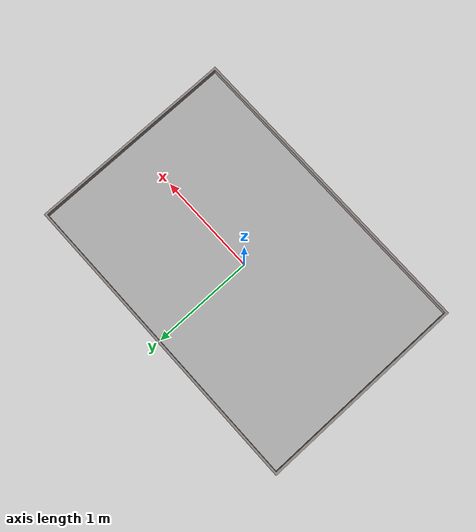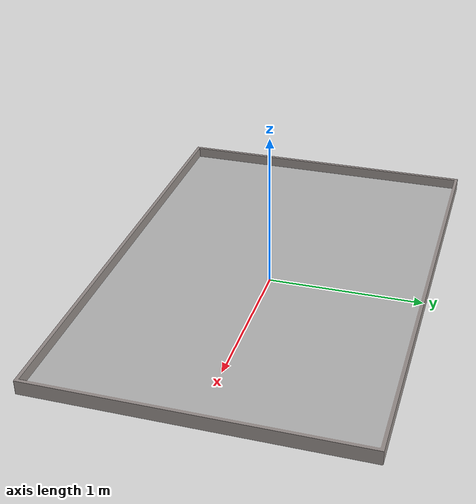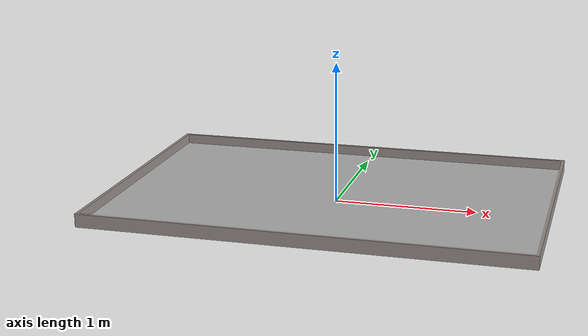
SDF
<sdf version="1.7">
 <world name="default">
  <gravity>0 0 -9.8</gravity>
  <magnetic_field>6e-06 2.3e-05 -4.2e-05</magnetic_field>
  <atmosphere type="adiabatic"/>
  <physics type="ode">
   <max_step_size>0.001</max_step_size>
   <real_time_factor>1</real_time_factor>
   <real_time_update_rate>1000</real_time_update_rate>
  </physics>
  <scene><ambient>1 1 1 1</ambient><background>0.7 0.7 0.7 1</background><shadows>0</shadows></scene>
  <audio><device>default</device></audio>
  <spherical_coordinates>
   <surface_model>EARTH_WGS84</surface_model>
   <latitude_deg>0</latitude_deg>
   <longitude_deg>0</longitude_deg>
   <elevation>0</elevation>
   <heading_deg>0</heading_deg>
  </spherical_coordinates>
  <model name="Table2025">
   <static>1</static>
   <link name="table">
    <inertial>
     <mass>108.217</mass>
     <inertia>
      <ixx>42.128</ixx>
      <ixy>-4.25029e-14</ixy>
      <ixz>6.83557e-16</ixz>
      <iyy>90.1988</iyy>
      <iyz>0</iyz>
      <izz>132.268</izz>
     </inertia>
    </inertial>
    <collision name="table_collision">
     <geometry><mesh><scale>1 1 1</scale><uri>model://Table2025/meshes/Table2025.dae</uri></mesh></geometry>
    </collision>
    <visual name="table_visual">
     <geometry><mesh><scale>1 1 1</scale><uri>model://Table2025/meshes/Table2025.dae</uri></mesh></geometry>
    </visual>
   </link>
  </model>
  <light name="user_spot_light_0" type="spot">
   <pose>0.011267 -0.01519 1 0 -0 0</pose>
   <diffuse>0.5 0.5 0.5 1</diffuse>
   <specular>0.1 0.1 0.1 1</specular>
   <direction>0 0 -1</direction>
   <attenuation>
    <range>20</range>
    <constant>1.2</constant>
    <linear>0.0</linear>
    <quadratic>0.0</quadratic>
   </attenuation>
   <cast_shadows>0</cast_shadows>
   <spot><inner_angle>0.6</inner_angle><outer_angle>1</outer_angle><falloff>1</falloff></spot>
  </light>
  <light name="user_spot_light_1" type="spot">
   <pose>1.5614 -0.961277 1 0 -0 0</pose>
   <diffuse>0.5 0.5 0.5 1</diffuse>
   <specular>0.1 0.1 0.1 1</specular>
   <direction>0 0 -1</direction>
   <attenuation>
    <range>20</range>
    <constant>1.2</constant>
    <linear>0.0</linear>
    <quadratic>0.0</quadratic>
   </attenuation>
   <cast_shadows>0</cast_shadows>
   <spot><inner_angle>0.6</inner_angle><outer_angle>1</outer_angle><falloff>1</falloff></spot>
  </light>
 </world>
</sdf>
